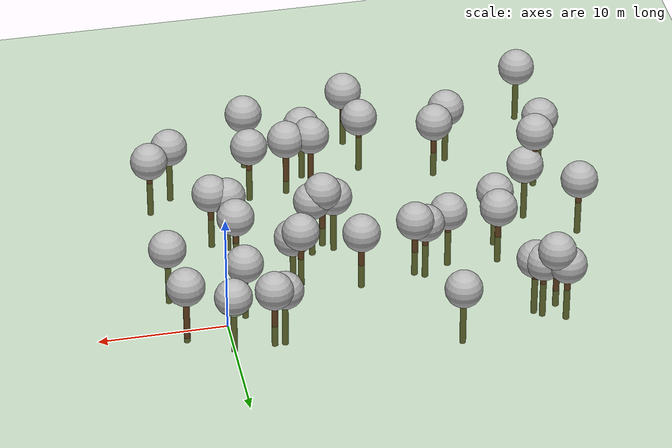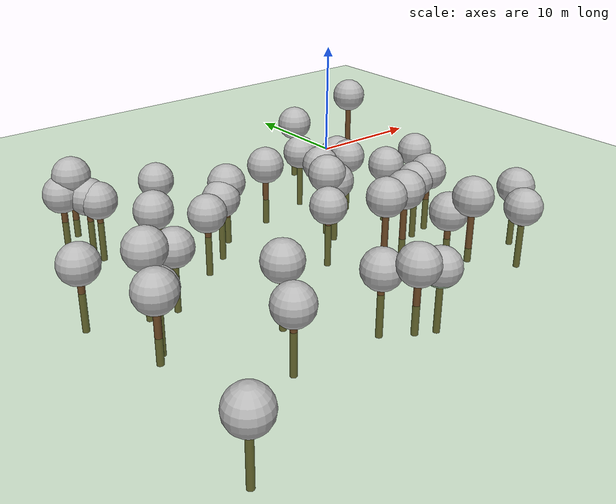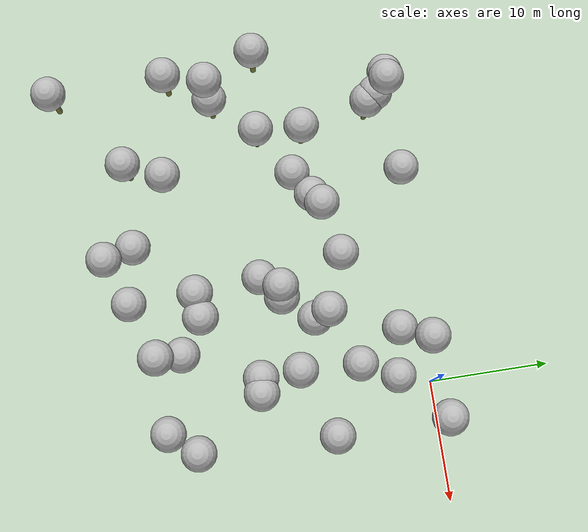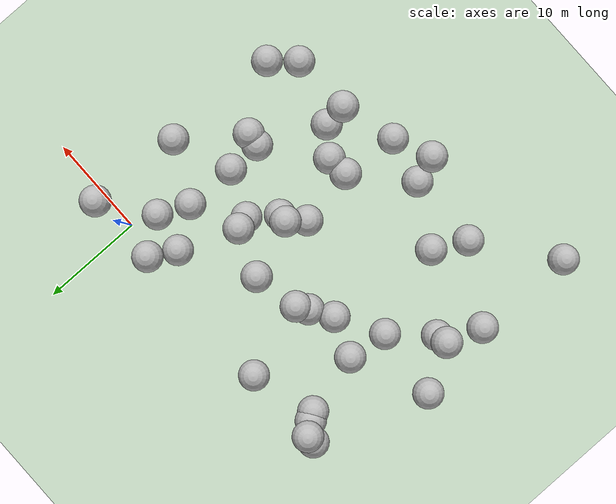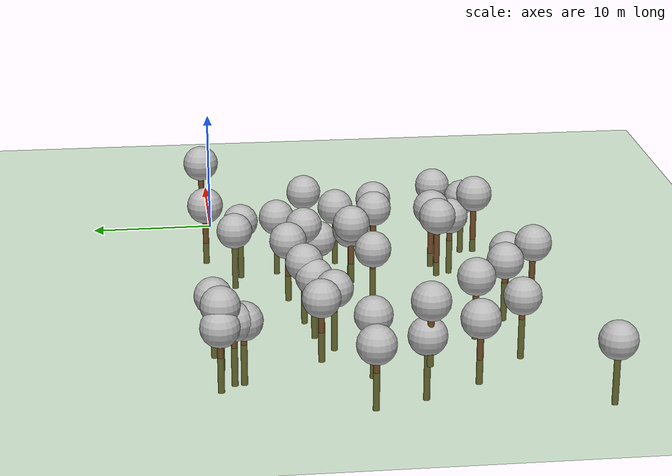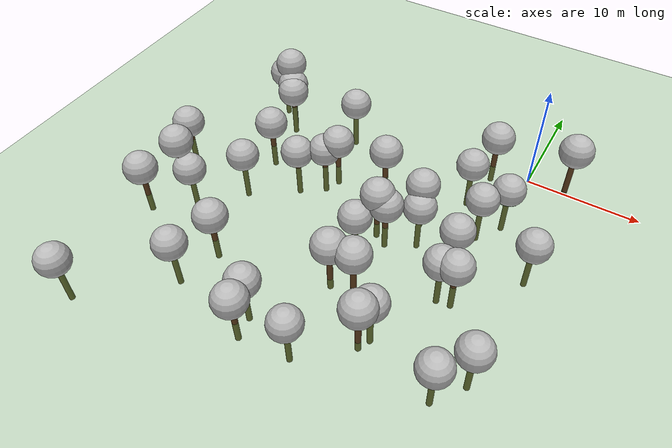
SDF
<sdf version="1.7">
 <world name="default">
  <model name="tree_simple448">
   <static>1</static>
   <link name="link">
    <pose>0 0 0.1 0 -0 0</pose>
    <collision name="collision_trunk">
     <pose>0 0 2 0 -0 0</pose>
     <geometry><cylinder><radius>0.25</radius><length>4</length></cylinder></geometry>
    </collision>
    <collision name="collision_treetop">
     <pose>0 0 5.2 0 -0 0</pose>
     <geometry><sphere><radius>1.5</radius></sphere></geometry>
    </collision>
    <visual name="trunk">
     <pose>0 0 2 0 -0 0</pose>
     <geometry><cylinder><radius>0.25</radius><length>4</length></cylinder></geometry>
     <material>
      <script>
       <uri>model://tree_simple/scripts</uri>
       <uri>model://tree_simple/materials/textures</uri>
       <name>TreeSimple/Trunk</name>
      </script>
     </material>
    </visual>
    <visual name="treetop">
     <pose>0 0 5.2 0 -0 0</pose>
     <geometry><sphere><radius>1.5</radius></sphere></geometry>
     <material>
      <script>
       <uri>model://tree_simple/scripts</uri>
       <uri>model://tree_simple/materials/textures</uri>
       <name>TreeSimple/Treetop</name>
      </script>
     </material>
    </visual>
   </link>
   <pose>-24.552 -1.42547 -3.47936 0 -0 0</pose>
  </model>
  <model name="tree_simple418">
   <static>1</static>
   <link name="link">
    <pose>0 0 0.1 0 -0 0</pose>
    <collision name="collision_trunk">
     <pose>0 0 2 0 -0 0</pose>
     <geometry><cylinder><radius>0.25</radius><length>4</length></cylinder></geometry>
    </collision>
    <collision name="collision_treetop">
     <pose>0 0 5.2 0 -0 0</pose>
     <geometry><sphere><radius>1.5</radius></sphere></geometry>
    </collision>
    <visual name="trunk">
     <pose>0 0 2 0 -0 0</pose>
     <geometry><cylinder><radius>0.25</radius><length>4</length></cylinder></geometry>
     <material>
      <script>
       <uri>model://tree_simple/scripts</uri>
       <uri>model://tree_simple/materials/textures</uri>
       <name>TreeSimple/Trunk</name>
      </script>
     </material>
    </visual>
    <visual name="treetop">
     <pose>0 0 5.2 0 -0 0</pose>
     <geometry><sphere><radius>1.5</radius></sphere></geometry>
     <material>
      <script>
       <uri>model://tree_simple/scripts</uri>
       <uri>model://tree_simple/materials/textures</uri>
       <name>TreeSimple/Treetop</name>
      </script>
     </material>
    </visual>
   </link>
   <pose>-22.9842 -7.39293 -2.59714 0 -0 0</pose>
  </model>
  <model name="tree_simple415">
   <static>1</static>
   <link name="link">
    <pose>0 0 0.1 0 -0 0</pose>
    <collision name="collision_trunk">
     <pose>0 0 2 0 -0 0</pose>
     <geometry><cylinder><radius>0.25</radius><length>4</length></cylinder></geometry>
    </collision>
    <collision name="collision_treetop">
     <pose>0 0 5.2 0 -0 0</pose>
     <geometry><sphere><radius>1.5</radius></sphere></geometry>
    </collision>
    <visual name="trunk">
     <pose>0 0 2 0 -0 0</pose>
     <geometry><cylinder><radius>0.25</radius><length>4</length></cylinder></geometry>
     <material>
      <script>
       <uri>model://tree_simple/scripts</uri>
       <uri>model://tree_simple/materials/textures</uri>
       <name>TreeSimple/Trunk</name>
      </script>
     </material>
    </visual>
    <visual name="treetop">
     <pose>0 0 5.2 0 -0 0</pose>
     <geometry><sphere><radius>1.5</radius></sphere></geometry>
     <material>
      <script>
       <uri>model://tree_simple/scripts</uri>
       <uri>model://tree_simple/materials/textures</uri>
       <name>TreeSimple/Treetop</name>
      </script>
     </material>
    </visual>
   </link>
   <pose>-11.6356 -5.82525 -2.31356 0 -0 0</pose>
  </model>
  <model name="tree_simple395">
   <static>1</static>
   <link name="link">
    <pose>0 0 0.1 0 -0 0</pose>
    <collision name="collision_trunk">
     <pose>0 0 2 0 -0 0</pose>
     <geometry><cylinder><radius>0.25</radius><length>4</length></cylinder></geometry>
    </collision>
    <collision name="collision_treetop">
     <pose>0 0 5.2 0 -0 0</pose>
     <geometry><sphere><radius>1.5</radius></sphere></geometry>
    </collision>
    <visual name="trunk">
     <pose>0 0 2 0 -0 0</pose>
     <geometry><cylinder><radius>0.25</radius><length>4</length></cylinder></geometry>
     <material>
      <script>
       <uri>model://tree_simple/scripts</uri>
       <uri>model://tree_simple/materials/textures</uri>
       <name>TreeSimple/Trunk</name>
      </script>
     </material>
    </visual>
    <visual name="treetop">
     <pose>0 0 5.2 0 -0 0</pose>
     <geometry><sphere><radius>1.5</radius></sphere></geometry>
     <material>
      <script>
       <uri>model://tree_simple/scripts</uri>
       <uri>model://tree_simple/materials/textures</uri>
       <name>TreeSimple/Treetop</name>
      </script>
     </material>
    </visual>
   </link>
   <pose>-14.8909 -23.0244 -3.47505 0 -0 0</pose>
  </model>
  <model name="tree_simple392">
   <static>1</static>
   <link name="link">
    <pose>0 0 0.1 0 -0 0</pose>
    <collision name="collision_trunk">
     <pose>0 0 2 0 -0 0</pose>
     <geometry><cylinder><radius>0.25</radius><length>4</length></cylinder></geometry>
    </collision>
    <collision name="collision_treetop">
     <pose>0 0 5.2 0 -0 0</pose>
     <geometry><sphere><radius>1.5</radius></sphere></geometry>
    </collision>
    <visual name="trunk">
     <pose>0 0 2 0 -0 0</pose>
     <geometry><cylinder><radius>0.25</radius><length>4</length></cylinder></geometry>
     <material>
      <script>
       <uri>model://tree_simple/scripts</uri>
       <uri>model://tree_simple/materials/textures</uri>
       <name>TreeSimple/Trunk</name>
      </script>
     </material>
    </visual>
    <visual name="treetop">
     <pose>0 0 5.2 0 -0 0</pose>
     <geometry><sphere><radius>1.5</radius></sphere></geometry>
     <material>
      <script>
       <uri>model://tree_simple/scripts</uri>
       <uri>model://tree_simple/materials/textures</uri>
       <name>TreeSimple/Treetop</name>
      </script>
     </material>
    </visual>
   </link>
   <pose>-2.49228 -10.6348 -2.96116 0 -0 0</pose>
  </model>
  <model name="tree_simple386">
   <static>1</static>
   <link name="link">
    <pose>0 0 0.1 0 -0 0</pose>
    <collision name="collision_trunk">
     <pose>0 0 2 0 -0 0</pose>
     <geometry><cylinder><radius>0.25</radius><length>4</length></cylinder></geometry>
    </collision>
    <collision name="collision_treetop">
     <pose>0 0 5.2 0 -0 0</pose>
     <geometry><sphere><radius>1.5</radius></sphere></geometry>
    </collision>
    <visual name="trunk">
     <pose>0 0 2 0 -0 0</pose>
     <geometry><cylinder><radius>0.25</radius><length>4</length></cylinder></geometry>
     <material>
      <script>
       <uri>model://tree_simple/scripts</uri>
       <uri>model://tree_simple/materials/textures</uri>
       <name>TreeSimple/Trunk</name>
      </script>
     </material>
    </visual>
    <visual name="treetop">
     <pose>0 0 5.2 0 -0 0</pose>
     <geometry><sphere><radius>1.5</radius></sphere></geometry>
     <material>
      <script>
       <uri>model://tree_simple/scripts</uri>
       <uri>model://tree_simple/materials/textures</uri>
       <name>TreeSimple/Treetop</name>
      </script>
     </material>
    </visual>
   </link>
   <pose>-19.2491 -8.77457 -3.43 0 -0 0</pose>
  </model>
  <model name="tree_simple376">
   <static>1</static>
   <link name="link">
    <pose>0 0 0.1 0 -0 0</pose>
    <collision name="collision_trunk">
     <pose>0 0 2 0 -0 0</pose>
     <geometry><cylinder><radius>0.25</radius><length>4</length></cylinder></geometry>
    </collision>
    <collision name="collision_treetop">
     <pose>0 0 5.2 0 -0 0</pose>
     <geometry><sphere><radius>1.5</radius></sphere></geometry>
    </collision>
    <visual name="trunk">
     <pose>0 0 2 0 -0 0</pose>
     <geometry><cylinder><radius>0.25</radius><length>4</length></cylinder></geometry>
     <material>
      <script>
       <uri>model://tree_simple/scripts</uri>
       <uri>model://tree_simple/materials/textures</uri>
       <name>TreeSimple/Trunk</name>
      </script>
     </material>
    </visual>
    <visual name="treetop">
     <pose>0 0 5.2 0 -0 0</pose>
     <geometry><sphere><radius>1.5</radius></sphere></geometry>
     <material>
      <script>
       <uri>model://tree_simple/scripts</uri>
       <uri>model://tree_simple/materials/textures</uri>
       <name>TreeSimple/Treetop</name>
      </script>
     </material>
    </visual>
   </link>
   <pose>-3.57496 0.511559 -2.02082 0 -0 0</pose>
  </model>
  <model name="tree_simple364">
   <static>1</static>
   <link name="link">
    <pose>0 0 0.1 0 -0 0</pose>
    <collision name="collision_trunk">
     <pose>0 0 2 0 -0 0</pose>
     <geometry><cylinder><radius>0.25</radius><length>4</length></cylinder></geometry>
    </collision>
    <collision name="collision_treetop">
     <pose>0 0 5.2 0 -0 0</pose>
     <geometry><sphere><radius>1.5</radius></sphere></geometry>
    </collision>
    <visual name="trunk">
     <pose>0 0 2 0 -0 0</pose>
     <geometry><cylinder><radius>0.25</radius><length>4</length></cylinder></geometry>
     <material>
      <script>
       <uri>model://tree_simple/scripts</uri>
       <uri>model://tree_simple/materials/textures</uri>
       <name>TreeSimple/Trunk</name>
      </script>
     </material>
    </visual>
    <visual name="treetop">
     <pose>0 0 5.2 0 -0 0</pose>
     <geometry><sphere><radius>1.5</radius></sphere></geometry>
     <material>
      <script>
       <uri>model://tree_simple/scripts</uri>
       <uri>model://tree_simple/materials/textures</uri>
       <name>TreeSimple/Treetop</name>
      </script>
     </material>
    </visual>
   </link>
   <pose>-5.23613 -20.1563 -3.14131 0 -0 0</pose>
  </model>
  <model name="tree_simple349">
   <static>1</static>
   <link name="link">
    <pose>0 0 0.1 0 -0 0</pose>
    <collision name="collision_trunk">
     <pose>0 0 2 0 -0 0</pose>
     <geometry><cylinder><radius>0.25</radius><length>4</length></cylinder></geometry>
    </collision>
    <collision name="collision_treetop">
     <pose>0 0 5.2 0 -0 0</pose>
     <geometry><sphere><radius>1.5</radius></sphere></geometry>
    </collision>
    <visual name="trunk">
     <pose>0 0 2 0 -0 0</pose>
     <geometry><cylinder><radius>0.25</radius><length>4</length></cylinder></geometry>
     <material>
      <script>
       <uri>model://tree_simple/scripts</uri>
       <uri>model://tree_simple/materials/textures</uri>
       <name>TreeSimple/Trunk</name>
      </script>
     </material>
    </visual>
    <visual name="treetop">
     <pose>0 0 5.2 0 -0 0</pose>
     <geometry><sphere><radius>1.5</radius></sphere></geometry>
     <material>
      <script>
       <uri>model://tree_simple/scripts</uri>
       <uri>model://tree_simple/materials/textures</uri>
       <name>TreeSimple/Treetop</name>
      </script>
     </material>
    </visual>
   </link>
   <pose>-20.4687 -19.6389 -2.41841 0 -0 0</pose>
  </model>
  <model name="tree_simple347">
   <static>1</static>
   <link name="link">
    <pose>0 0 0.1 0 -0 0</pose>
    <collision name="collision_trunk">
     <pose>0 0 2 0 -0 0</pose>
     <geometry><cylinder><radius>0.25</radius><length>4</length></cylinder></geometry>
    </collision>
    <collision name="collision_treetop">
     <pose>0 0 5.2 0 -0 0</pose>
     <geometry><sphere><radius>1.5</radius></sphere></geometry>
    </collision>
    <visual name="trunk">
     <pose>0 0 2 0 -0 0</pose>
     <geometry><cylinder><radius>0.25</radius><length>4</length></cylinder></geometry>
     <material>
      <script>
       <uri>model://tree_simple/scripts</uri>
       <uri>model://tree_simple/materials/textures</uri>
       <name>TreeSimple/Trunk</name>
      </script>
     </material>
    </visual>
    <visual name="treetop">
     <pose>0 0 5.2 0 -0 0</pose>
     <geometry><sphere><radius>1.5</radius></sphere></geometry>
     <material>
      <script>
       <uri>model://tree_simple/scripts</uri>
       <uri>model://tree_simple/materials/textures</uri>
       <name>TreeSimple/Treetop</name>
      </script>
     </material>
    </visual>
   </link>
   <pose>-10.2981 -24.1175 -4.38654 0 -0 0</pose>
  </model>
  <model name="tree_simple322">
   <static>1</static>
   <link name="link">
    <pose>0 0 0.1 0 -0 0</pose>
    <collision name="collision_trunk">
     <pose>0 0 2 0 -0 0</pose>
     <geometry><cylinder><radius>0.25</radius><length>4</length></cylinder></geometry>
    </collision>
    <collision name="collision_treetop">
     <pose>0 0 5.2 0 -0 0</pose>
     <geometry><sphere><radius>1.5</radius></sphere></geometry>
    </collision>
    <visual name="trunk">
     <pose>0 0 2 0 -0 0</pose>
     <geometry><cylinder><radius>0.25</radius><length>4</length></cylinder></geometry>
     <material>
      <script>
       <uri>model://tree_simple/scripts</uri>
       <uri>model://tree_simple/materials/textures</uri>
       <name>TreeSimple/Trunk</name>
      </script>
     </material>
    </visual>
    <visual name="treetop">
     <pose>0 0 5.2 0 -0 0</pose>
     <geometry><sphere><radius>1.5</radius></sphere></geometry>
     <material>
      <script>
       <uri>model://tree_simple/scripts</uri>
       <uri>model://tree_simple/materials/textures</uri>
       <name>TreeSimple/Treetop</name>
      </script>
     </material>
    </visual>
   </link>
   <pose>-10.7837 -12.8599 -3.69969 0 -0 0</pose>
  </model>
  <model name="tree_simple317">
   <static>1</static>
   <link name="link">
    <pose>0 0 0.1 0 -0 0</pose>
    <collision name="collision_trunk">
     <pose>0 0 2 0 -0 0</pose>
     <geometry><cylinder><radius>0.25</radius><length>4</length></cylinder></geometry>
    </collision>
    <collision name="collision_treetop">
     <pose>0 0 5.2 0 -0 0</pose>
     <geometry><sphere><radius>1.5</radius></sphere></geometry>
    </collision>
    <visual name="trunk">
     <pose>0 0 2 0 -0 0</pose>
     <geometry><cylinder><radius>0.25</radius><length>4</length></cylinder></geometry>
     <material>
      <script>
       <uri>model://tree_simple/scripts</uri>
       <uri>model://tree_simple/materials/textures</uri>
       <name>TreeSimple/Trunk</name>
      </script>
     </material>
    </visual>
    <visual name="treetop">
     <pose>0 0 5.2 0 -0 0</pose>
     <geometry><sphere><radius>1.5</radius></sphere></geometry>
     <material>
      <script>
       <uri>model://tree_simple/scripts</uri>
       <uri>model://tree_simple/materials/textures</uri>
       <name>TreeSimple/Treetop</name>
      </script>
     </material>
    </visual>
   </link>
   <pose>1.01183 -22.237 -3.78125 0 -0 0</pose>
  </model>
  <model name="tree_simple308">
   <static>1</static>
   <link name="link">
    <pose>0 0 0.1 0 -0 0</pose>
    <collision name="collision_trunk">
     <pose>0 0 2 0 -0 0</pose>
     <geometry><cylinder><radius>0.25</radius><length>4</length></cylinder></geometry>
    </collision>
    <collision name="collision_treetop">
     <pose>0 0 5.2 0 -0 0</pose>
     <geometry><sphere><radius>1.5</radius></sphere></geometry>
    </collision>
    <visual name="trunk">
     <pose>0 0 2 0 -0 0</pose>
     <geometry><cylinder><radius>0.25</radius><length>4</length></cylinder></geometry>
     <material>
      <script>
       <uri>model://tree_simple/scripts</uri>
       <uri>model://tree_simple/materials/textures</uri>
       <name>TreeSimple/Trunk</name>
      </script>
     </material>
    </visual>
    <visual name="treetop">
     <pose>0 0 5.2 0 -0 0</pose>
     <geometry><sphere><radius>1.5</radius></sphere></geometry>
     <material>
      <script>
       <uri>model://tree_simple/scripts</uri>
       <uri>model://tree_simple/materials/textures</uri>
       <name>TreeSimple/Treetop</name>
      </script>
     </material>
    </visual>
   </link>
   <pose>3.23733 0.582979 -0.581338 0 -0 0</pose>
  </model>
  <model name="tree_simple303">
   <static>1</static>
   <link name="link">
    <pose>0 0 0.1 0 -0 0</pose>
    <collision name="collision_trunk">
     <pose>0 0 2 0 -0 0</pose>
     <geometry><cylinder><radius>0.25</radius><length>4</length></cylinder></geometry>
    </collision>
    <collision name="collision_treetop">
     <pose>0 0 5.2 0 -0 0</pose>
     <geometry><sphere><radius>1.5</radius></sphere></geometry>
    </collision>
    <visual name="trunk">
     <pose>0 0 2 0 -0 0</pose>
     <geometry><cylinder><radius>0.25</radius><length>4</length></cylinder></geometry>
     <material>
      <script>
       <uri>model://tree_simple/scripts</uri>
       <uri>model://tree_simple/materials/textures</uri>
       <name>TreeSimple/Trunk</name>
      </script>
     </material>
    </visual>
    <visual name="treetop">
     <pose>0 0 5.2 0 -0 0</pose>
     <geometry><sphere><radius>1.5</radius></sphere></geometry>
     <material>
      <script>
       <uri>model://tree_simple/scripts</uri>
       <uri>model://tree_simple/materials/textures</uri>
       <name>TreeSimple/Treetop</name>
      </script>
     </material>
    </visual>
   </link>
   <pose>-9.56095 -11.2139 -1.86029 0 -0 0</pose>
  </model>
  <model name="tree_simple284">
   <static>1</static>
   <link name="link">
    <pose>0 0 0.1 0 -0 0</pose>
    <collision name="collision_trunk">
     <pose>0 0 2 0 -0 0</pose>
     <geometry><cylinder><radius>0.25</radius><length>4</length></cylinder></geometry>
    </collision>
    <collision name="collision_treetop">
     <pose>0 0 5.2 0 -0 0</pose>
     <geometry><sphere><radius>1.5</radius></sphere></geometry>
    </collision>
    <visual name="trunk">
     <pose>0 0 2 0 -0 0</pose>
     <geometry><cylinder><radius>0.25</radius><length>4</length></cylinder></geometry>
     <material>
      <script>
       <uri>model://tree_simple/scripts</uri>
       <uri>model://tree_simple/materials/textures</uri>
       <name>TreeSimple/Trunk</name>
      </script>
     </material>
    </visual>
    <visual name="treetop">
     <pose>0 0 5.2 0 -0 0</pose>
     <geometry><sphere><radius>1.5</radius></sphere></geometry>
     <material>
      <script>
       <uri>model://tree_simple/scripts</uri>
       <uri>model://tree_simple/materials/textures</uri>
       <name>TreeSimple/Treetop</name>
      </script>
     </material>
    </visual>
   </link>
   <pose>-18.3911 0.559963 -4.00638 0 -0 0</pose>
  </model>
  <model name="tree_simple279">
   <static>1</static>
   <link name="link">
    <pose>0 0 0.1 0 -0 0</pose>
    <collision name="collision_trunk">
     <pose>0 0 2 0 -0 0</pose>
     <geometry><cylinder><radius>0.25</radius><length>4</length></cylinder></geometry>
    </collision>
    <collision name="collision_treetop">
     <pose>0 0 5.2 0 -0 0</pose>
     <geometry><sphere><radius>1.5</radius></sphere></geometry>
    </collision>
    <visual name="trunk">
     <pose>0 0 2 0 -0 0</pose>
     <geometry><cylinder><radius>0.25</radius><length>4</length></cylinder></geometry>
     <material>
      <script>
       <uri>model://tree_simple/scripts</uri>
       <uri>model://tree_simple/materials/textures</uri>
       <name>TreeSimple/Trunk</name>
      </script>
     </material>
    </visual>
    <visual name="treetop">
     <pose>0 0 5.2 0 -0 0</pose>
     <geometry><sphere><radius>1.5</radius></sphere></geometry>
     <material>
      <script>
       <uri>model://tree_simple/scripts</uri>
       <uri>model://tree_simple/materials/textures</uri>
       <name>TreeSimple/Treetop</name>
      </script>
     </material>
    </visual>
   </link>
   <pose>-25.045 -0.68247 -3.27145 0 -0 0</pose>
  </model>
  <model name="tree_simple276">
   <static>1</static>
   <link name="link">
    <pose>0 0 0.1 0 -0 0</pose>
    <collision name="collision_trunk">
     <pose>0 0 2 0 -0 0</pose>
     <geometry><cylinder><radius>0.25</radius><length>4</length></cylinder></geometry>
    </collision>
    <collision name="collision_treetop">
     <pose>0 0 5.2 0 -0 0</pose>
     <geometry><sphere><radius>1.5</radius></sphere></geometry>
    </collision>
    <visual name="trunk">
     <pose>0 0 2 0 -0 0</pose>
     <geometry><cylinder><radius>0.25</radius><length>4</length></cylinder></geometry>
     <material>
      <script>
       <uri>model://tree_simple/scripts</uri>
       <uri>model://tree_simple/materials/textures</uri>
       <name>TreeSimple/Trunk</name>
      </script>
     </material>
    </visual>
    <visual name="treetop">
     <pose>0 0 5.2 0 -0 0</pose>
     <geometry><sphere><radius>1.5</radius></sphere></geometry>
     <material>
      <script>
       <uri>model://tree_simple/scripts</uri>
       <uri>model://tree_simple/materials/textures</uri>
       <name>TreeSimple/Treetop</name>
      </script>
     </material>
    </visual>
   </link>
   <pose>-29.5152 -28.5569 -4.08456 0 -0 0</pose>
  </model>
  <model name="tree_simple272">
   <static>1</static>
   <link name="link">
    <pose>0 0 0.1 0 -0 0</pose>
    <collision name="collision_trunk">
     <pose>0 0 2 0 -0 0</pose>
     <geometry><cylinder><radius>0.25</radius><length>4</length></cylinder></geometry>
    </collision>
    <collision name="collision_treetop">
     <pose>0 0 5.2 0 -0 0</pose>
     <geometry><sphere><radius>1.5</radius></sphere></geometry>
    </collision>
    <visual name="trunk">
     <pose>0 0 2 0 -0 0</pose>
     <geometry><cylinder><radius>0.25</radius><length>4</length></cylinder></geometry>
     <material>
      <script>
       <uri>model://tree_simple/scripts</uri>
       <uri>model://tree_simple/materials/textures</uri>
       <name>TreeSimple/Trunk</name>
      </script>
     </material>
    </visual>
    <visual name="treetop">
     <pose>0 0 5.2 0 -0 0</pose>
     <geometry><sphere><radius>1.5</radius></sphere></geometry>
     <material>
      <script>
       <uri>model://tree_simple/scripts</uri>
       <uri>model://tree_simple/materials/textures</uri>
       <name>TreeSimple/Treetop</name>
      </script>
     </material>
    </visual>
   </link>
   <pose>-28.9961 -18.3973 -2.12477 0 -0 0</pose>
  </model>
  <model name="tree_simple268">
   <static>1</static>
   <link name="link">
    <pose>0 0 0.1 0 -0 0</pose>
    <collision name="collision_trunk">
     <pose>0 0 2 0 -0 0</pose>
     <geometry><cylinder><radius>0.25</radius><length>4</length></cylinder></geometry>
    </collision>
    <collision name="collision_treetop">
     <pose>0 0 5.2 0 -0 0</pose>
     <geometry><sphere><radius>1.5</radius></sphere></geometry>
    </collision>
    <visual name="trunk">
     <pose>0 0 2 0 -0 0</pose>
     <geometry><cylinder><radius>0.25</radius><length>4</length></cylinder></geometry>
     <material>
      <script>
       <uri>model://tree_simple/scripts</uri>
       <uri>model://tree_simple/materials/textures</uri>
       <name>TreeSimple/Trunk</name>
      </script>
     </material>
    </visual>
    <visual name="treetop">
     <pose>0 0 5.2 0 -0 0</pose>
     <geometry><sphere><radius>1.5</radius></sphere></geometry>
     <material>
      <script>
       <uri>model://tree_simple/scripts</uri>
       <uri>model://tree_simple/materials/textures</uri>
       <name>TreeSimple/Treetop</name>
      </script>
     </material>
    </visual>
   </link>
   <pose>-9.9718 -18.2645 -1.3354 0 -0 0</pose>
  </model>
  <model name="tree_simple253">
   <static>1</static>
   <link name="link">
    <pose>0 0 0.1 0 -0 0</pose>
    <collision name="collision_trunk">
     <pose>0 0 2 0 -0 0</pose>
     <geometry><cylinder><radius>0.25</radius><length>4</length></cylinder></geometry>
    </collision>
    <collision name="collision_treetop">
     <pose>0 0 5.2 0 -0 0</pose>
     <geometry><sphere><radius>1.5</radius></sphere></geometry>
    </collision>
    <visual name="trunk">
     <pose>0 0 2 0 -0 0</pose>
     <geometry><cylinder><radius>0.25</radius><length>4</length></cylinder></geometry>
     <material>
      <script>
       <uri>model://tree_simple/scripts</uri>
       <uri>model://tree_simple/materials/textures</uri>
       <name>TreeSimple/Trunk</name>
      </script>
     </material>
    </visual>
    <visual name="treetop">
     <pose>0 0 5.2 0 -0 0</pose>
     <geometry><sphere><radius>1.5</radius></sphere></geometry>
     <material>
      <script>
       <uri>model://tree_simple/scripts</uri>
       <uri>model://tree_simple/materials/textures</uri>
       <name>TreeSimple/Treetop</name>
      </script>
     </material>
    </visual>
   </link>
   <pose>-6.71888 -8.75374 -4.18475 0 -0 0</pose>
  </model>
  <model name="tree_simple245">
   <static>1</static>
   <link name="link">
    <pose>0 0 0.1 0 -0 0</pose>
    <collision name="collision_trunk">
     <pose>0 0 2 0 -0 0</pose>
     <geometry><cylinder><radius>0.25</radius><length>4</length></cylinder></geometry>
    </collision>
    <collision name="collision_treetop">
     <pose>0 0 5.2 0 -0 0</pose>
     <geometry><sphere><radius>1.5</radius></sphere></geometry>
    </collision>
    <visual name="trunk">
     <pose>0 0 2 0 -0 0</pose>
     <geometry><cylinder><radius>0.25</radius><length>4</length></cylinder></geometry>
     <material>
      <script>
       <uri>model://tree_simple/scripts</uri>
       <uri>model://tree_simple/materials/textures</uri>
       <name>TreeSimple/Trunk</name>
      </script>
     </material>
    </visual>
    <visual name="treetop">
     <pose>0 0 5.2 0 -0 0</pose>
     <geometry><sphere><radius>1.5</radius></sphere></geometry>
     <material>
      <script>
       <uri>model://tree_simple/scripts</uri>
       <uri>model://tree_simple/materials/textures</uri>
       <name>TreeSimple/Treetop</name>
      </script>
     </material>
    </visual>
   </link>
   <pose>-25.7974 0.315232 -1.63571 0 -0 0</pose>
  </model>
  <model name="tree_simple234">
   <static>1</static>
   <link name="link">
    <pose>0 0 0.1 0 -0 0</pose>
    <collision name="collision_trunk">
     <pose>0 0 2 0 -0 0</pose>
     <geometry><cylinder><radius>0.25</radius><length>4</length></cylinder></geometry>
    </collision>
    <collision name="collision_treetop">
     <pose>0 0 5.2 0 -0 0</pose>
     <geometry><sphere><radius>1.5</radius></sphere></geometry>
    </collision>
    <visual name="trunk">
     <pose>0 0 2 0 -0 0</pose>
     <geometry><cylinder><radius>0.25</radius><length>4</length></cylinder></geometry>
     <material>
      <script>
       <uri>model://tree_simple/scripts</uri>
       <uri>model://tree_simple/materials/textures</uri>
       <name>TreeSimple/Trunk</name>
      </script>
     </material>
    </visual>
    <visual name="treetop">
     <pose>0 0 5.2 0 -0 0</pose>
     <geometry><sphere><radius>1.5</radius></sphere></geometry>
     <material>
      <script>
       <uri>model://tree_simple/scripts</uri>
       <uri>model://tree_simple/materials/textures</uri>
       <name>TreeSimple/Treetop</name>
      </script>
     </material>
    </visual>
   </link>
   <pose>-7.13672 -7.51189 -2.78391 0 -0 0</pose>
  </model>
  <model name="tree_simple201">
   <static>1</static>
   <link name="link">
    <pose>0 0 0.1 0 -0 0</pose>
    <collision name="collision_trunk">
     <pose>0 0 2 0 -0 0</pose>
     <geometry><cylinder><radius>0.25</radius><length>4</length></cylinder></geometry>
    </collision>
    <collision name="collision_treetop">
     <pose>0 0 5.2 0 -0 0</pose>
     <geometry><sphere><radius>1.5</radius></sphere></geometry>
    </collision>
    <visual name="trunk">
     <pose>0 0 2 0 -0 0</pose>
     <geometry><cylinder><radius>0.25</radius><length>4</length></cylinder></geometry>
     <material>
      <script>
       <uri>model://tree_simple/scripts</uri>
       <uri>model://tree_simple/materials/textures</uri>
       <name>TreeSimple/Trunk</name>
      </script>
     </material>
    </visual>
    <visual name="treetop">
     <pose>0 0 5.2 0 -0 0</pose>
     <geometry><sphere><radius>1.5</radius></sphere></geometry>
     <material>
      <script>
       <uri>model://tree_simple/scripts</uri>
       <uri>model://tree_simple/materials/textures</uri>
       <name>TreeSimple/Treetop</name>
      </script>
     </material>
    </visual>
   </link>
   <pose>-16.1063 -6.72563 -2.41608 0 -0 0</pose>
  </model>
  <model name="tree_simple200">
   <static>1</static>
   <link name="link">
    <pose>0 0 0.1 0 -0 0</pose>
    <collision name="collision_trunk">
     <pose>0 0 2 0 -0 0</pose>
     <geometry><cylinder><radius>0.25</radius><length>4</length></cylinder></geometry>
    </collision>
    <collision name="collision_treetop">
     <pose>0 0 5.2 0 -0 0</pose>
     <geometry><sphere><radius>1.5</radius></sphere></geometry>
    </collision>
    <visual name="trunk">
     <pose>0 0 2 0 -0 0</pose>
     <geometry><cylinder><radius>0.25</radius><length>4</length></cylinder></geometry>
     <material>
      <script>
       <uri>model://tree_simple/scripts</uri>
       <uri>model://tree_simple/materials/textures</uri>
       <name>TreeSimple/Trunk</name>
      </script>
     </material>
    </visual>
    <visual name="treetop">
     <pose>0 0 5.2 0 -0 0</pose>
     <geometry><sphere><radius>1.5</radius></sphere></geometry>
     <material>
      <script>
       <uri>model://tree_simple/scripts</uri>
       <uri>model://tree_simple/materials/textures</uri>
       <name>TreeSimple/Treetop</name>
      </script>
     </material>
    </visual>
   </link>
   <pose>-22.1854 -22.9372 -3.45538 0 -0 0</pose>
  </model>
  <model name="tree_simple195">
   <static>1</static>
   <link name="link">
    <pose>0 0 0.1 0 -0 0</pose>
    <collision name="collision_trunk">
     <pose>0 0 2 0 -0 0</pose>
     <geometry><cylinder><radius>0.25</radius><length>4</length></cylinder></geometry>
    </collision>
    <collision name="collision_treetop">
     <pose>0 0 5.2 0 -0 0</pose>
     <geometry><sphere><radius>1.5</radius></sphere></geometry>
    </collision>
    <visual name="trunk">
     <pose>0 0 2 0 -0 0</pose>
     <geometry><cylinder><radius>0.25</radius><length>4</length></cylinder></geometry>
     <material>
      <script>
       <uri>model://tree_simple/scripts</uri>
       <uri>model://tree_simple/materials/textures</uri>
       <name>TreeSimple/Trunk</name>
      </script>
     </material>
    </visual>
    <visual name="treetop">
     <pose>0 0 5.2 0 -0 0</pose>
     <geometry><sphere><radius>1.5</radius></sphere></geometry>
     <material>
      <script>
       <uri>model://tree_simple/scripts</uri>
       <uri>model://tree_simple/materials/textures</uri>
       <name>TreeSimple/Treetop</name>
      </script>
     </material>
    </visual>
   </link>
   <pose>2.97635 -19.9314 -3.30355 0 -0 0</pose>
  </model>
  <model name="tree_simple194">
   <static>1</static>
   <link name="link">
    <pose>0 0 0.1 0 -0 0</pose>
    <collision name="collision_trunk">
     <pose>0 0 2 0 -0 0</pose>
     <geometry><cylinder><radius>0.25</radius><length>4</length></cylinder></geometry>
    </collision>
    <collision name="collision_treetop">
     <pose>0 0 5.2 0 -0 0</pose>
     <geometry><sphere><radius>1.5</radius></sphere></geometry>
    </collision>
    <visual name="trunk">
     <pose>0 0 2 0 -0 0</pose>
     <geometry><cylinder><radius>0.25</radius><length>4</length></cylinder></geometry>
     <material>
      <script>
       <uri>model://tree_simple/scripts</uri>
       <uri>model://tree_simple/materials/textures</uri>
       <name>TreeSimple/Trunk</name>
      </script>
     </material>
    </visual>
    <visual name="treetop">
     <pose>0 0 5.2 0 -0 0</pose>
     <geometry><sphere><radius>1.5</radius></sphere></geometry>
     <material>
      <script>
       <uri>model://tree_simple/scripts</uri>
       <uri>model://tree_simple/materials/textures</uri>
       <name>TreeSimple/Treetop</name>
      </script>
     </material>
    </visual>
   </link>
   <pose>-23.619 -11.2623 -3.86113 0 -0 0</pose>
  </model>
  <model name="tree_simple155">
   <static>1</static>
   <link name="link">
    <pose>0 0 0.1 0 -0 0</pose>
    <collision name="collision_trunk">
     <pose>0 0 2 0 -0 0</pose>
     <geometry><cylinder><radius>0.25</radius><length>4</length></cylinder></geometry>
    </collision>
    <collision name="collision_treetop">
     <pose>0 0 5.2 0 -0 0</pose>
     <geometry><sphere><radius>1.5</radius></sphere></geometry>
    </collision>
    <visual name="trunk">
     <pose>0 0 2 0 -0 0</pose>
     <geometry><cylinder><radius>0.25</radius><length>4</length></cylinder></geometry>
     <material>
      <script>
       <uri>model://tree_simple/scripts</uri>
       <uri>model://tree_simple/materials/textures</uri>
       <name>TreeSimple/Trunk</name>
      </script>
     </material>
    </visual>
    <visual name="treetop">
     <pose>0 0 5.2 0 -0 0</pose>
     <geometry><sphere><radius>1.5</radius></sphere></geometry>
     <material>
      <script>
       <uri>model://tree_simple/scripts</uri>
       <uri>model://tree_simple/materials/textures</uri>
       <name>TreeSimple/Treetop</name>
      </script>
     </material>
    </visual>
   </link>
   <pose>-2.37176 -13.9733 -3.29249 0 -0 0</pose>
  </model>
  <model name="tree_simple154">
   <static>1</static>
   <link name="link">
    <pose>0 0 0.1 0 -0 0</pose>
    <collision name="collision_trunk">
     <pose>0 0 2 0 -0 0</pose>
     <geometry><cylinder><radius>0.25</radius><length>4</length></cylinder></geometry>
    </collision>
    <collision name="collision_treetop">
     <pose>0 0 5.2 0 -0 0</pose>
     <geometry><sphere><radius>1.5</radius></sphere></geometry>
    </collision>
    <visual name="trunk">
     <pose>0 0 2 0 -0 0</pose>
     <geometry><cylinder><radius>0.25</radius><length>4</length></cylinder></geometry>
     <material>
      <script>
       <uri>model://tree_simple/scripts</uri>
       <uri>model://tree_simple/materials/textures</uri>
       <name>TreeSimple/Trunk</name>
      </script>
     </material>
    </visual>
    <visual name="treetop">
     <pose>0 0 5.2 0 -0 0</pose>
     <geometry><sphere><radius>1.5</radius></sphere></geometry>
     <material>
      <script>
       <uri>model://tree_simple/scripts</uri>
       <uri>model://tree_simple/materials/textures</uri>
       <name>TreeSimple/Treetop</name>
      </script>
     </material>
    </visual>
   </link>
   <pose>3.29558 -8.44092 -3.62575 0 -0 0</pose>
  </model>
  <model name="tree_simple149">
   <static>1</static>
   <link name="link">
    <pose>0 0 0.1 0 -0 0</pose>
    <collision name="collision_trunk">
     <pose>0 0 2 0 -0 0</pose>
     <geometry><cylinder><radius>0.25</radius><length>4</length></cylinder></geometry>
    </collision>
    <collision name="collision_treetop">
     <pose>0 0 5.2 0 -0 0</pose>
     <geometry><sphere><radius>1.5</radius></sphere></geometry>
    </collision>
    <visual name="trunk">
     <pose>0 0 2 0 -0 0</pose>
     <geometry><cylinder><radius>0.25</radius><length>4</length></cylinder></geometry>
     <material>
      <script>
       <uri>model://tree_simple/scripts</uri>
       <uri>model://tree_simple/materials/textures</uri>
       <name>TreeSimple/Trunk</name>
      </script>
     </material>
    </visual>
    <visual name="treetop">
     <pose>0 0 5.2 0 -0 0</pose>
     <geometry><sphere><radius>1.5</radius></sphere></geometry>
     <material>
      <script>
       <uri>model://tree_simple/scripts</uri>
       <uri>model://tree_simple/materials/textures</uri>
       <name>TreeSimple/Treetop</name>
      </script>
     </material>
    </visual>
   </link>
   <pose>-30.3771 -10.615 -3.17481 0 -0 0</pose>
  </model>
  <model name="tree_simple140">
   <static>1</static>
   <link name="link">
    <pose>0 0 0.1 0 -0 0</pose>
    <collision name="collision_trunk">
     <pose>0 0 2 0 -0 0</pose>
     <geometry><cylinder><radius>0.25</radius><length>4</length></cylinder></geometry>
    </collision>
    <collision name="collision_treetop">
     <pose>0 0 5.2 0 -0 0</pose>
     <geometry><sphere><radius>1.5</radius></sphere></geometry>
    </collision>
    <visual name="trunk">
     <pose>0 0 2 0 -0 0</pose>
     <geometry><cylinder><radius>0.25</radius><length>4</length></cylinder></geometry>
     <material>
      <script>
       <uri>model://tree_simple/scripts</uri>
       <uri>model://tree_simple/materials/textures</uri>
       <name>TreeSimple/Trunk</name>
      </script>
     </material>
    </visual>
    <visual name="treetop">
     <pose>0 0 5.2 0 -0 0</pose>
     <geometry><sphere><radius>1.5</radius></sphere></geometry>
     <material>
      <script>
       <uri>model://tree_simple/scripts</uri>
       <uri>model://tree_simple/materials/textures</uri>
       <name>TreeSimple/Treetop</name>
      </script>
     </material>
    </visual>
   </link>
   <pose>-1.08104 -14.0922 -2.88382 0 -0 0</pose>
  </model>
  <model name="tree_simple138">
   <static>1</static>
   <link name="link">
    <pose>0 0 0.1 0 -0 0</pose>
    <collision name="collision_trunk">
     <pose>0 0 2 0 -0 0</pose>
     <geometry><cylinder><radius>0.25</radius><length>4</length></cylinder></geometry>
    </collision>
    <collision name="collision_treetop">
     <pose>0 0 5.2 0 -0 0</pose>
     <geometry><sphere><radius>1.5</radius></sphere></geometry>
    </collision>
    <visual name="trunk">
     <pose>0 0 2 0 -0 0</pose>
     <geometry><cylinder><radius>0.25</radius><length>4</length></cylinder></geometry>
     <material>
      <script>
       <uri>model://tree_simple/scripts</uri>
       <uri>model://tree_simple/materials/textures</uri>
       <name>TreeSimple/Trunk</name>
      </script>
     </material>
    </visual>
    <visual name="treetop">
     <pose>0 0 5.2 0 -0 0</pose>
     <geometry><sphere><radius>1.5</radius></sphere></geometry>
     <material>
      <script>
       <uri>model://tree_simple/scripts</uri>
       <uri>model://tree_simple/materials/textures</uri>
       <name>TreeSimple/Treetop</name>
      </script>
     </material>
    </visual>
   </link>
   <pose>-8.74041 -11.2488 -2.6818 0 -0 0</pose>
  </model>
  <model name="tree_simple121">
   <static>1</static>
   <link name="link">
    <pose>0 0 0.1 0 -0 0</pose>
    <collision name="collision_trunk">
     <pose>0 0 2 0 -0 0</pose>
     <geometry><cylinder><radius>0.25</radius><length>4</length></cylinder></geometry>
    </collision>
    <collision name="collision_treetop">
     <pose>0 0 5.2 0 -0 0</pose>
     <geometry><sphere><radius>1.5</radius></sphere></geometry>
    </collision>
    <visual name="trunk">
     <pose>0 0 2 0 -0 0</pose>
     <geometry><cylinder><radius>0.25</radius><length>4</length></cylinder></geometry>
     <material>
      <script>
       <uri>model://tree_simple/scripts</uri>
       <uri>model://tree_simple/materials/textures</uri>
       <name>TreeSimple/Trunk</name>
      </script>
     </material>
    </visual>
    <visual name="treetop">
     <pose>0 0 5.2 0 -0 0</pose>
     <geometry><sphere><radius>1.5</radius></sphere></geometry>
     <material>
      <script>
       <uri>model://tree_simple/scripts</uri>
       <uri>model://tree_simple/materials/textures</uri>
       <name>TreeSimple/Treetop</name>
      </script>
     </material>
    </visual>
   </link>
   <pose>-26.676 0.407106 -2.99973 0 -0 0</pose>
  </model>
  <model name="tree_simple106">
   <static>1</static>
   <link name="link">
    <pose>0 0 0.1 0 -0 0</pose>
    <collision name="collision_trunk">
     <pose>0 0 2 0 -0 0</pose>
     <geometry><cylinder><radius>0.25</radius><length>4</length></cylinder></geometry>
    </collision>
    <collision name="collision_treetop">
     <pose>0 0 5.2 0 -0 0</pose>
     <geometry><sphere><radius>1.5</radius></sphere></geometry>
    </collision>
    <visual name="trunk">
     <pose>0 0 2 0 -0 0</pose>
     <geometry><cylinder><radius>0.25</radius><length>4</length></cylinder></geometry>
     <material>
      <script>
       <uri>model://tree_simple/scripts</uri>
       <uri>model://tree_simple/materials/textures</uri>
       <name>TreeSimple/Trunk</name>
      </script>
     </material>
    </visual>
    <visual name="treetop">
     <pose>0 0 5.2 0 -0 0</pose>
     <geometry><sphere><radius>1.5</radius></sphere></geometry>
     <material>
      <script>
       <uri>model://tree_simple/scripts</uri>
       <uri>model://tree_simple/materials/textures</uri>
       <name>TreeSimple/Treetop</name>
      </script>
     </material>
    </visual>
   </link>
   <pose>-0.906213 -2.57618 -4.59298 0 -0 0</pose>
  </model>
  <model name="tree_simple89">
   <static>1</static>
   <link name="link">
    <pose>0 0 0.1 0 -0 0</pose>
    <collision name="collision_trunk">
     <pose>0 0 2 0 -0 0</pose>
     <geometry><cylinder><radius>0.25</radius><length>4</length></cylinder></geometry>
    </collision>
    <collision name="collision_treetop">
     <pose>0 0 5.2 0 -0 0</pose>
     <geometry><sphere><radius>1.5</radius></sphere></geometry>
    </collision>
    <visual name="trunk">
     <pose>0 0 2 0 -0 0</pose>
     <geometry><cylinder><radius>0.25</radius><length>4</length></cylinder></geometry>
     <material>
      <script>
       <uri>model://tree_simple/scripts</uri>
       <uri>model://tree_simple/materials/textures</uri>
       <name>TreeSimple/Trunk</name>
      </script>
     </material>
    </visual>
    <visual name="treetop">
     <pose>0 0 5.2 0 -0 0</pose>
     <geometry><sphere><radius>1.5</radius></sphere></geometry>
     <material>
      <script>
       <uri>model://tree_simple/scripts</uri>
       <uri>model://tree_simple/materials/textures</uri>
       <name>TreeSimple/Treetop</name>
      </script>
     </material>
    </visual>
   </link>
   <pose>-14.0445 -25.4354 -2.3863 0 -0 0</pose>
  </model>
  <model name="tree_simple76">
   <static>1</static>
   <link name="link">
    <pose>0 0 0.1 0 -0 0</pose>
    <collision name="collision_trunk">
     <pose>0 0 2 0 -0 0</pose>
     <geometry><cylinder><radius>0.25</radius><length>4</length></cylinder></geometry>
    </collision>
    <collision name="collision_treetop">
     <pose>0 0 5.2 0 -0 0</pose>
     <geometry><sphere><radius>1.5</radius></sphere></geometry>
    </collision>
    <visual name="trunk">
     <pose>0 0 2 0 -0 0</pose>
     <geometry><cylinder><radius>0.25</radius><length>4</length></cylinder></geometry>
     <material>
      <script>
       <uri>model://tree_simple/scripts</uri>
       <uri>model://tree_simple/materials/textures</uri>
       <name>TreeSimple/Trunk</name>
      </script>
     </material>
    </visual>
    <visual name="treetop">
     <pose>0 0 5.2 0 -0 0</pose>
     <geometry><sphere><radius>1.5</radius></sphere></geometry>
     <material>
      <script>
       <uri>model://tree_simple/scripts</uri>
       <uri>model://tree_simple/materials/textures</uri>
       <name>TreeSimple/Treetop</name>
      </script>
     </material>
    </visual>
   </link>
   <pose>-27.7087 -14.9467 -1.14683 0 -0 0</pose>
  </model>
  <model name="tree_simple64">
   <static>1</static>
   <link name="link">
    <pose>0 0 0.1 0 -0 0</pose>
    <collision name="collision_trunk">
     <pose>0 0 2 0 -0 0</pose>
     <geometry><cylinder><radius>0.25</radius><length>4</length></cylinder></geometry>
    </collision>
    <collision name="collision_treetop">
     <pose>0 0 5.2 0 -0 0</pose>
     <geometry><sphere><radius>1.5</radius></sphere></geometry>
    </collision>
    <visual name="trunk">
     <pose>0 0 2 0 -0 0</pose>
     <geometry><cylinder><radius>0.25</radius><length>4</length></cylinder></geometry>
     <material>
      <script>
       <uri>model://tree_simple/scripts</uri>
       <uri>model://tree_simple/materials/textures</uri>
       <name>TreeSimple/Trunk</name>
      </script>
     </material>
    </visual>
    <visual name="treetop">
     <pose>0 0 5.2 0 -0 0</pose>
     <geometry><sphere><radius>1.5</radius></sphere></geometry>
     <material>
      <script>
       <uri>model://tree_simple/scripts</uri>
       <uri>model://tree_simple/materials/textures</uri>
       <name>TreeSimple/Treetop</name>
      </script>
     </material>
    </visual>
   </link>
   <pose>-5.16462 -22.1748 -1.25552 0 -0 0</pose>
  </model>
  <model name="tree_simple60">
   <static>1</static>
   <link name="link">
    <pose>0 0 0.1 0 -0 0</pose>
    <collision name="collision_trunk">
     <pose>0 0 2 0 -0 0</pose>
     <geometry><cylinder><radius>0.25</radius><length>4</length></cylinder></geometry>
    </collision>
    <collision name="collision_treetop">
     <pose>0 0 5.2 0 -0 0</pose>
     <geometry><sphere><radius>1.5</radius></sphere></geometry>
    </collision>
    <visual name="trunk">
     <pose>0 0 2 0 -0 0</pose>
     <geometry><cylinder><radius>0.25</radius><length>4</length></cylinder></geometry>
     <material>
      <script>
       <uri>model://tree_simple/scripts</uri>
       <uri>model://tree_simple/materials/textures</uri>
       <name>TreeSimple/Trunk</name>
      </script>
     </material>
    </visual>
    <visual name="treetop">
     <pose>0 0 5.2 0 -0 0</pose>
     <geometry><sphere><radius>1.5</radius></sphere></geometry>
     <material>
      <script>
       <uri>model://tree_simple/scripts</uri>
       <uri>model://tree_simple/materials/textures</uri>
       <name>TreeSimple/Treetop</name>
      </script>
     </material>
    </visual>
   </link>
   <pose>-4.80911 -1.85604 -3.92923 0 -0 0</pose>
  </model>
  <model name="tree_simple37">
   <static>1</static>
   <link name="link">
    <pose>0 0 0.1 0 -0 0</pose>
    <collision name="collision_trunk">
     <pose>0 0 2 0 -0 0</pose>
     <geometry><cylinder><radius>0.25</radius><length>4</length></cylinder></geometry>
    </collision>
    <collision name="collision_treetop">
     <pose>0 0 5.2 0 -0 0</pose>
     <geometry><sphere><radius>1.5</radius></sphere></geometry>
    </collision>
    <visual name="trunk">
     <pose>0 0 2 0 -0 0</pose>
     <geometry><cylinder><radius>0.25</radius><length>4</length></cylinder></geometry>
     <material>
      <script>
       <uri>model://tree_simple/scripts</uri>
       <uri>model://tree_simple/materials/textures</uri>
       <name>TreeSimple/Trunk</name>
      </script>
     </material>
    </visual>
    <visual name="treetop">
     <pose>0 0 5.2 0 -0 0</pose>
     <geometry><sphere><radius>1.5</radius></sphere></geometry>
     <material>
      <script>
       <uri>model://tree_simple/scripts</uri>
       <uri>model://tree_simple/materials/textures</uri>
       <name>TreeSimple/Treetop</name>
      </script>
     </material>
    </visual>
   </link>
   <pose>-17.1201 -7.42378 -3.28367 0 -0 0</pose>
  </model>
  <model name="tree_simple18">
   <static>1</static>
   <link name="link">
    <pose>0 0 0.1 0 -0 0</pose>
    <collision name="collision_trunk">
     <pose>0 0 2 0 -0 0</pose>
     <geometry><cylinder><radius>0.25</radius><length>4</length></cylinder></geometry>
    </collision>
    <collision name="collision_treetop">
     <pose>0 0 5.2 0 -0 0</pose>
     <geometry><sphere><radius>1.5</radius></sphere></geometry>
    </collision>
    <visual name="trunk">
     <pose>0 0 2 0 -0 0</pose>
     <geometry><cylinder><radius>0.25</radius><length>4</length></cylinder></geometry>
     <material>
      <script>
       <uri>model://tree_simple/scripts</uri>
       <uri>model://tree_simple/materials/textures</uri>
       <name>TreeSimple/Trunk</name>
      </script>
     </material>
    </visual>
    <visual name="treetop">
     <pose>0 0 5.2 0 -0 0</pose>
     <geometry><sphere><radius>1.5</radius></sphere></geometry>
     <material>
      <script>
       <uri>model://tree_simple/scripts</uri>
       <uri>model://tree_simple/materials/textures</uri>
       <name>TreeSimple/Treetop</name>
      </script>
     </material>
    </visual>
   </link>
   <pose>-7.91295 -18.0895 -1.34606 0 -0 0</pose>
  </model>
  <model name="tree_simple14">
   <static>1</static>
   <link name="link">
    <pose>0 0 0.1 0 -0 0</pose>
    <collision name="collision_trunk">
     <pose>0 0 2 0 -0 0</pose>
     <geometry><cylinder><radius>0.25</radius><length>4</length></cylinder></geometry>
    </collision>
    <collision name="collision_treetop">
     <pose>0 0 5.2 0 -0 0</pose>
     <geometry><sphere><radius>1.5</radius></sphere></geometry>
    </collision>
    <visual name="trunk">
     <pose>0 0 2 0 -0 0</pose>
     <geometry><cylinder><radius>0.25</radius><length>4</length></cylinder></geometry>
     <material>
      <script>
       <uri>model://tree_simple/scripts</uri>
       <uri>model://tree_simple/materials/textures</uri>
       <name>TreeSimple/Trunk</name>
      </script>
     </material>
    </visual>
    <visual name="treetop">
     <pose>0 0 5.2 0 -0 0</pose>
     <geometry><sphere><radius>1.5</radius></sphere></geometry>
     <material>
      <script>
       <uri>model://tree_simple/scripts</uri>
       <uri>model://tree_simple/materials/textures</uri>
       <name>TreeSimple/Treetop</name>
      </script>
     </material>
    </visual>
   </link>
   <pose>-26.9725 -14.8589 -4.24335 0 -0 0</pose>
  </model>
  <model name="tree_simple2">
   <static>1</static>
   <link name="link">
    <pose>0 0 0.1 0 -0 0</pose>
    <collision name="collision_trunk">
     <pose>0 0 2 0 -0 0</pose>
     <geometry><cylinder><radius>0.25</radius><length>4</length></cylinder></geometry>
    </collision>
    <collision name="collision_treetop">
     <pose>0 0 5.2 0 -0 0</pose>
     <geometry><sphere><radius>1.5</radius></sphere></geometry>
    </collision>
    <visual name="trunk">
     <pose>0 0 2 0 -0 0</pose>
     <geometry><cylinder><radius>0.25</radius><length>4</length></cylinder></geometry>
     <material>
      <script>
       <uri>model://tree_simple/scripts</uri>
       <uri>model://tree_simple/materials/textures</uri>
       <name>TreeSimple/Trunk</name>
      </script>
     </material>
    </visual>
    <visual name="treetop">
     <pose>0 0 5.2 0 -0 0</pose>
     <geometry><sphere><radius>1.5</radius></sphere></geometry>
     <material>
      <script>
       <uri>model://tree_simple/scripts</uri>
       <uri>model://tree_simple/materials/textures</uri>
       <name>TreeSimple/Treetop</name>
      </script>
     </material>
    </visual>
   </link>
   <pose>-2.32375 -5.59992 -3.78122 0 -0 0</pose>
  </model>
  <model name="ground_plane">
   <static>1</static>
   <link name="link">
    <collision name="collision">
     <geometry><plane><normal>0 0 1</normal><size>250 250</size></plane></geometry>
     <surface><friction><ode><mu>1</mu><mu2>1</mu2></ode></friction></surface>
    </collision>
    <visual name="grass">
     <cast_shadows>0</cast_shadows>
     <geometry><plane><normal>0 0 1</normal><size>150 250</size></plane></geometry>
     <material>
      <script><uri>file://media/materials/scripts/Gazebo.material</uri><name>Gazebo/Grass</name></script>
     </material>
    </visual>
   </link>
  </model>
 </world>
</sdf>
